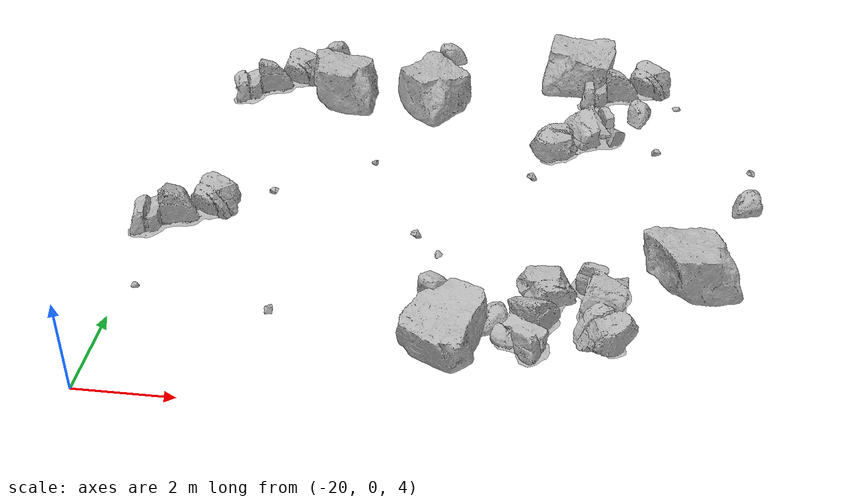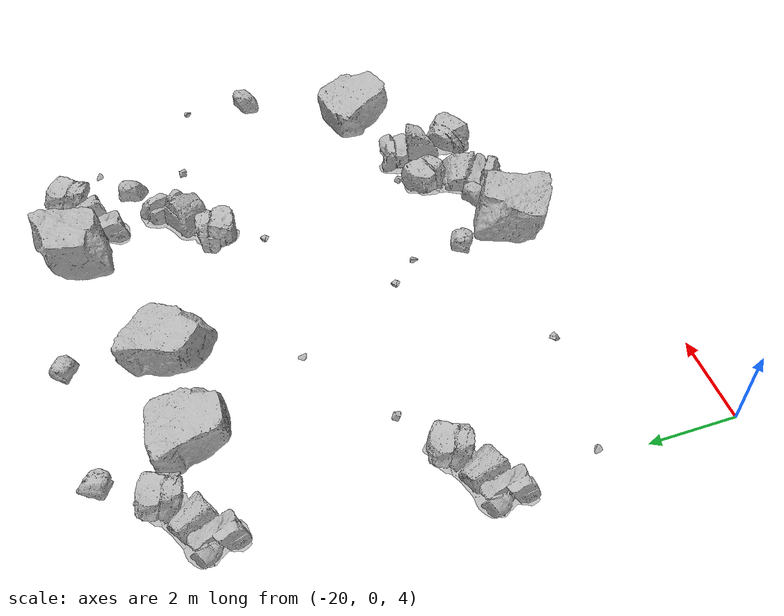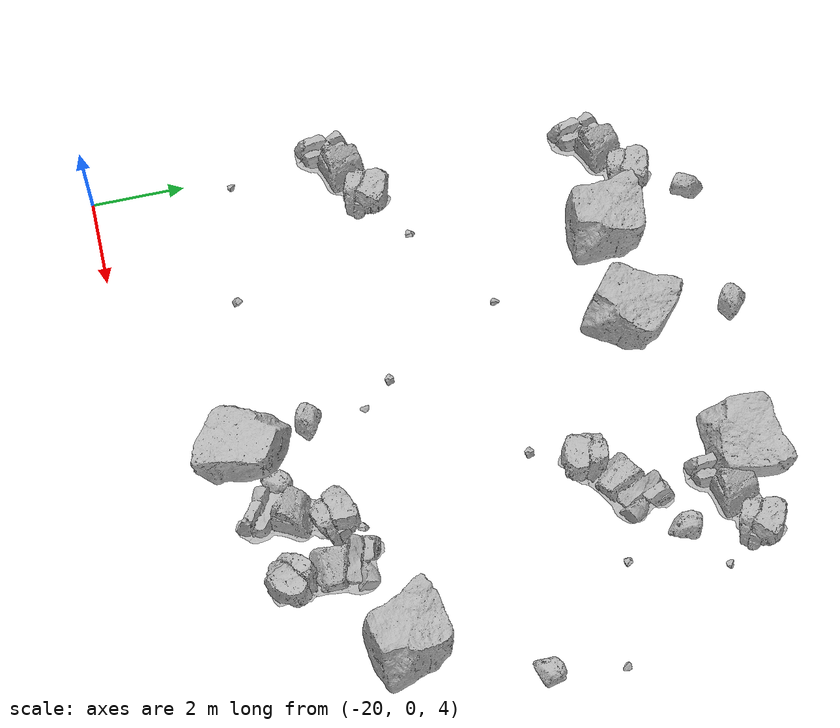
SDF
<sdf version="1.7">
 <world name="marsyard">
  <model name="Rock_23">
   <static>true</static>
   <pose>-19.7637 3.0094 4.0000 0.0000 0.0000 1.9646</pose>
   <link name="link">
    <visual name="visual">
     <geometry><mesh><uri>package://rock_generator/rocks_ws/rock_7/meshes/rock_7.stl</uri></mesh></geometry>
    </visual>
    <collision name="collision">
     <geometry><mesh><uri>package://rock_generator/rocks_ws/rock_7/meshes/rock_7.stl</uri></mesh></geometry>
    </collision>
   </link>
  </model>
  <model name="Rock_24">
   <static>true</static>
   <pose>-10.0388 11.6362 4.0000 0.0000 0.0000 -2.7205</pose>
   <link name="link">
    <visual name="visual">
     <geometry><mesh><uri>package://rock_generator/rocks_ws/rock_2/meshes/rock_2.stl</uri></mesh></geometry>
    </visual>
    <collision name="collision">
     <geometry><mesh><uri>package://rock_generator/rocks_ws/rock_2/meshes/rock_2.stl</uri></mesh></geometry>
    </collision>
   </link>
  </model>
  <model name="Rock_32">
   <static>true</static>
   <pose>-17.4140 12.6476 4.0000 0.0000 0.0000 -1.1147</pose>
   <link name="link">
    <visual name="visual">
     <geometry><mesh><uri>package://rock_generator/rocks_ws/rock_3/meshes/rock_3.stl</uri></mesh></geometry>
    </visual>
    <collision name="collision">
     <geometry><mesh><uri>package://rock_generator/rocks_ws/rock_3/meshes/rock_3.stl</uri></mesh></geometry>
    </collision>
   </link>
  </model>
  <model name="Rock_45">
   <static>true</static>
   <pose>-15.6850 7.9126 4.0000 0.0000 0.0000 1.1688</pose>
   <link name="link">
    <visual name="visual">
     <geometry><mesh><uri>package://rock_generator/rocks_ws/rock_7/meshes/rock_7.stl</uri></mesh></geometry>
    </visual>
    <collision name="collision">
     <geometry><mesh><uri>package://rock_generator/rocks_ws/rock_7/meshes/rock_7.stl</uri></mesh></geometry>
    </collision>
   </link>
  </model>
  <model name="Rock_63">
   <static>true</static>
   <pose>-8.7851 4.4097 4.0000 0.0000 0.0000 1.0416</pose>
   <link name="link">
    <visual name="visual">
     <geometry><mesh><uri>package://rock_generator/rocks_ws/rock_1/meshes/rock_1.stl</uri></mesh></geometry>
    </visual>
    <collision name="collision">
     <geometry><mesh><uri>package://rock_generator/rocks_ws/rock_1/meshes/rock_1.stl</uri></mesh></geometry>
    </collision>
   </link>
  </model>
  <model name="Rock_65">
   <static>true</static>
   <pose>-19.4154 5.5209 4.0000 0.0000 0.0000 -2.6353</pose>
   <link name="link">
    <visual name="visual">
     <geometry><mesh><uri>package://rock_generator/rocks_ws/rock_2/meshes/rock_2.stl</uri></mesh></geometry>
    </visual>
    <collision name="collision">
     <geometry><mesh><uri>package://rock_generator/rocks_ws/rock_2/meshes/rock_2.stl</uri></mesh></geometry>
    </collision>
   </link>
  </model>
  <model name="Rock_66">
   <static>true</static>
   <pose>-11.6904 2.9555 4.0000 0.0000 0.0000 -1.8432</pose>
   <link name="link">
    <visual name="visual">
     <geometry><mesh><uri>package://rock_generator/rocks_ws/rock_2/meshes/rock_2.stl</uri></mesh></geometry>
    </visual>
    <collision name="collision">
     <geometry><mesh><uri>package://rock_generator/rocks_ws/rock_2/meshes/rock_2.stl</uri></mesh></geometry>
    </collision>
   </link>
  </model>
  <model name="Rock_70">
   <static>true</static>
   <pose>-7.1670 8.4936 4.0000 0.0000 0.0000 -1.3558</pose>
   <link name="link">
    <visual name="visual">
     <geometry><mesh><uri>package://rock_generator/rocks_ws/rock_7/meshes/rock_7.stl</uri></mesh></geometry>
    </visual>
    <collision name="collision">
     <geometry><mesh><uri>package://rock_generator/rocks_ws/rock_7/meshes/rock_7.stl</uri></mesh></geometry>
    </collision>
   </link>
  </model>
  <model name="Rock_73">
   <static>true</static>
   <pose>-18.6388 11.1336 4.0000 0.0000 0.0000 -2.5194</pose>
   <link name="link">
    <visual name="visual">
     <geometry><mesh><uri>package://rock_generator/rocks_ws/rock_2/meshes/rock_2.stl</uri></mesh></geometry>
    </visual>
    <collision name="collision">
     <geometry><mesh><uri>package://rock_generator/rocks_ws/rock_2/meshes/rock_2.stl</uri></mesh></geometry>
    </collision>
   </link>
  </model>
  <model name="Rock_75">
   <static>true</static>
   <pose>-16.9196 2.6045 4.0000 0.0000 0.0000 2.2960</pose>
   <link name="link">
    <visual name="visual">
     <geometry><mesh><uri>package://rock_generator/rocks_ws/rock_9/meshes/rock_9.stl</uri></mesh></geometry>
    </visual>
    <collision name="collision">
     <geometry><mesh><uri>package://rock_generator/rocks_ws/rock_9/meshes/rock_9.stl</uri></mesh></geometry>
    </collision>
   </link>
  </model>
  <model name="Rock_76">
   <static>true</static>
   <pose>-12.5364 2.6059 4.0000 0.0000 0.0000 1.5156</pose>
   <link name="link">
    <visual name="visual">
     <geometry><mesh><uri>package://rock_generator/rocks_ws/rock_3/meshes/rock_3.stl</uri></mesh></geometry>
    </visual>
    <collision name="collision">
     <geometry><mesh><uri>package://rock_generator/rocks_ws/rock_3/meshes/rock_3.stl</uri></mesh></geometry>
    </collision>
   </link>
  </model>
  <model name="Rock_77">
   <static>true</static>
   <pose>-9.7457 10.3986 4.0000 0.0000 0.0000 2.2480</pose>
   <link name="link">
    <visual name="visual">
     <geometry><mesh><uri>package://rock_generator/rocks_ws/rock_3/meshes/rock_3.stl</uri></mesh></geometry>
    </visual>
    <collision name="collision">
     <geometry><mesh><uri>package://rock_generator/rocks_ws/rock_3/meshes/rock_3.stl</uri></mesh></geometry>
    </collision>
   </link>
  </model>
  <model name="Rock_81">
   <static>true</static>
   <pose>-13.7381 3.4369 4.0000 0.0000 0.0000 -2.6287</pose>
   <link name="link">
    <visual name="visual">
     <geometry><mesh><uri>package://rock_generator/rocks_ws/rock_3/meshes/rock_3.stl</uri></mesh></geometry>
    </visual>
    <collision name="collision">
     <geometry><mesh><uri>package://rock_generator/rocks_ws/rock_3/meshes/rock_3.stl</uri></mesh></geometry>
    </collision>
   </link>
  </model>
  <model name="Rock_90">
   <static>true</static>
   <pose>-14.3786 5.3461 4.0000 0.0000 0.0000 -2.2751</pose>
   <link name="link">
    <visual name="visual">
     <geometry><mesh><uri>package://rock_generator/rocks_ws/rock_9/meshes/rock_9.stl</uri></mesh></geometry>
    </visual>
    <collision name="collision">
     <geometry><mesh><uri>package://rock_generator/rocks_ws/rock_9/meshes/rock_9.stl</uri></mesh></geometry>
    </collision>
   </link>
  </model>
  <model name="Rock_98">
   <static>true</static>
   <pose>-17.0514 10.6896 4.0000 0.0000 0.0000 0.7326</pose>
   <link name="link">
    <visual name="visual">
     <geometry><mesh><uri>package://rock_generator/rocks_ws/rock_1/meshes/rock_1.stl</uri></mesh></geometry>
    </visual>
    <collision name="collision">
     <geometry><mesh><uri>package://rock_generator/rocks_ws/rock_1/meshes/rock_1.stl</uri></mesh></geometry>
    </collision>
   </link>
  </model>
  <model name="Rock_103">
   <static>true</static>
   <pose>-11.1746 12.1977 4.0000 0.0000 0.0000 -0.8749</pose>
   <link name="link">
    <visual name="visual">
     <geometry><mesh><uri>package://rock_generator/rocks_ws/rock_1/meshes/rock_1.stl</uri></mesh></geometry>
    </visual>
    <collision name="collision">
     <geometry><mesh><uri>package://rock_generator/rocks_ws/rock_1/meshes/rock_1.stl</uri></mesh></geometry>
    </collision>
   </link>
  </model>
  <model name="Rock_106">
   <static>true</static>
   <pose>-10.3955 3.0985 4.0000 0.0000 0.0000 1.6553</pose>
   <link name="link">
    <visual name="visual">
     <geometry><mesh><uri>package://rock_generator/rocks_ws/rock_2/meshes/rock_2.stl</uri></mesh></geometry>
    </visual>
    <collision name="collision">
     <geometry><mesh><uri>package://rock_generator/rocks_ws/rock_2/meshes/rock_2.stl</uri></mesh></geometry>
    </collision>
   </link>
  </model>
  <model name="Rock_109">
   <static>true</static>
   <pose>-14.4640 12.7255 4.0000 0.0000 0.0000 -2.8202</pose>
   <link name="link">
    <visual name="visual">
     <geometry><mesh><uri>package://rock_generator/rocks_ws/rock_3/meshes/rock_3.stl</uri></mesh></geometry>
    </visual>
    <collision name="collision">
     <geometry><mesh><uri>package://rock_generator/rocks_ws/rock_3/meshes/rock_3.stl</uri></mesh></geometry>
    </collision>
   </link>
  </model>
  <model name="Rock_111">
   <static>true</static>
   <pose>-17.7357 6.5410 4.0000 0.0000 0.0000 -0.1461</pose>
   <link name="link">
    <visual name="visual">
     <geometry><mesh><uri>package://rock_generator/rocks_ws/rock_9/meshes/rock_9.stl</uri></mesh></geometry>
    </visual>
    <collision name="collision">
     <geometry><mesh><uri>package://rock_generator/rocks_ws/rock_9/meshes/rock_9.stl</uri></mesh></geometry>
    </collision>
   </link>
  </model>
  <model name="Rock_115">
   <static>true</static>
   <pose>-13.2596 1.9618 4.0000 0.0000 0.0000 -2.8537</pose>
   <link name="link">
    <visual name="visual">
     <geometry><mesh><uri>package://rock_generator/rocks_ws/rock_1/meshes/rock_1.stl</uri></mesh></geometry>
    </visual>
    <collision name="collision">
     <geometry><mesh><uri>package://rock_generator/rocks_ws/rock_1/meshes/rock_1.stl</uri></mesh></geometry>
    </collision>
   </link>
  </model>
  <model name="Rock_122">
   <static>true</static>
   <pose>-13.8340 4.7139 4.0000 0.0000 0.0000 -1.9825</pose>
   <link name="link">
    <visual name="visual">
     <geometry><mesh><uri>package://rock_generator/rocks_ws/rock_7/meshes/rock_7.stl</uri></mesh></geometry>
    </visual>
    <collision name="collision">
     <geometry><mesh><uri>package://rock_generator/rocks_ws/rock_7/meshes/rock_7.stl</uri></mesh></geometry>
    </collision>
   </link>
  </model>
  <model name="Rock_123">
   <static>true</static>
   <pose>-14.7790 10.7263 4.0000 0.0000 0.0000 0.0969</pose>
   <link name="link">
    <visual name="visual">
     <geometry><mesh><uri>package://rock_generator/rocks_ws/rock_1/meshes/rock_1.stl</uri></mesh></geometry>
    </visual>
    <collision name="collision">
     <geometry><mesh><uri>package://rock_generator/rocks_ws/rock_1/meshes/rock_1.stl</uri></mesh></geometry>
    </collision>
   </link>
  </model>
  <model name="Rock_138">
   <static>true</static>
   <pose>-11.2345 4.1006 4.0000 0.0000 0.0000 -0.5162</pose>
   <link name="link">
    <visual name="visual">
     <geometry><mesh><uri>package://rock_generator/rocks_ws/rock_9/meshes/rock_9.stl</uri></mesh></geometry>
    </visual>
    <collision name="collision">
     <geometry><mesh><uri>package://rock_generator/rocks_ws/rock_9/meshes/rock_9.stl</uri></mesh></geometry>
    </collision>
   </link>
  </model>
  <model name="Rock_168">
   <static>true</static>
   <pose>-11.1559 9.2274 4.0000 0.0000 0.0000 0.7226</pose>
   <link name="link">
    <visual name="visual">
     <geometry><mesh><uri>package://rock_generator/rocks_ws/rock_2/meshes/rock_2.stl</uri></mesh></geometry>
    </visual>
    <collision name="collision">
     <geometry><mesh><uri>package://rock_generator/rocks_ws/rock_2/meshes/rock_2.stl</uri></mesh></geometry>
    </collision>
   </link>
  </model>
  <model name="Rock_169">
   <static>true</static>
   <pose>-12.0823 7.7690 4.0000 0.0000 0.0000 -2.3003</pose>
   <link name="link">
    <visual name="visual">
     <geometry><mesh><uri>package://rock_generator/rocks_ws/rock_9/meshes/rock_9.stl</uri></mesh></geometry>
    </visual>
    <collision name="collision">
     <geometry><mesh><uri>package://rock_generator/rocks_ws/rock_9/meshes/rock_9.stl</uri></mesh></geometry>
    </collision>
   </link>
  </model>
  <model name="Rock_172">
   <static>true</static>
   <pose>-9.2970 9.0851 4.0000 0.0000 0.0000 0.5299</pose>
   <link name="link">
    <visual name="visual">
     <geometry><mesh><uri>package://rock_generator/rocks_ws/rock_9/meshes/rock_9.stl</uri></mesh></geometry>
    </visual>
    <collision name="collision">
     <geometry><mesh><uri>package://rock_generator/rocks_ws/rock_9/meshes/rock_9.stl</uri></mesh></geometry>
    </collision>
   </link>
  </model>
  <model name="Rock_173">
   <static>true</static>
   <pose>-8.7755 11.0637 4.0000 0.0000 0.0000 2.1492</pose>
   <link name="link">
    <visual name="visual">
     <geometry><mesh><uri>package://rock_generator/rocks_ws/rock_7/meshes/rock_7.stl</uri></mesh></geometry>
    </visual>
    <collision name="collision">
     <geometry><mesh><uri>package://rock_generator/rocks_ws/rock_7/meshes/rock_7.stl</uri></mesh></geometry>
    </collision>
   </link>
  </model>
  <model name="Rock_188">
   <static>true</static>
   <pose>-7.4128 6.9913 4.0000 0.0000 0.0000 1.3284</pose>
   <link name="link">
    <visual name="visual">
     <geometry><mesh><uri>package://rock_generator/rocks_ws/rock_3/meshes/rock_3.stl</uri></mesh></geometry>
    </visual>
    <collision name="collision">
     <geometry><mesh><uri>package://rock_generator/rocks_ws/rock_3/meshes/rock_3.stl</uri></mesh></geometry>
    </collision>
   </link>
  </model>
 </world>
</sdf>
